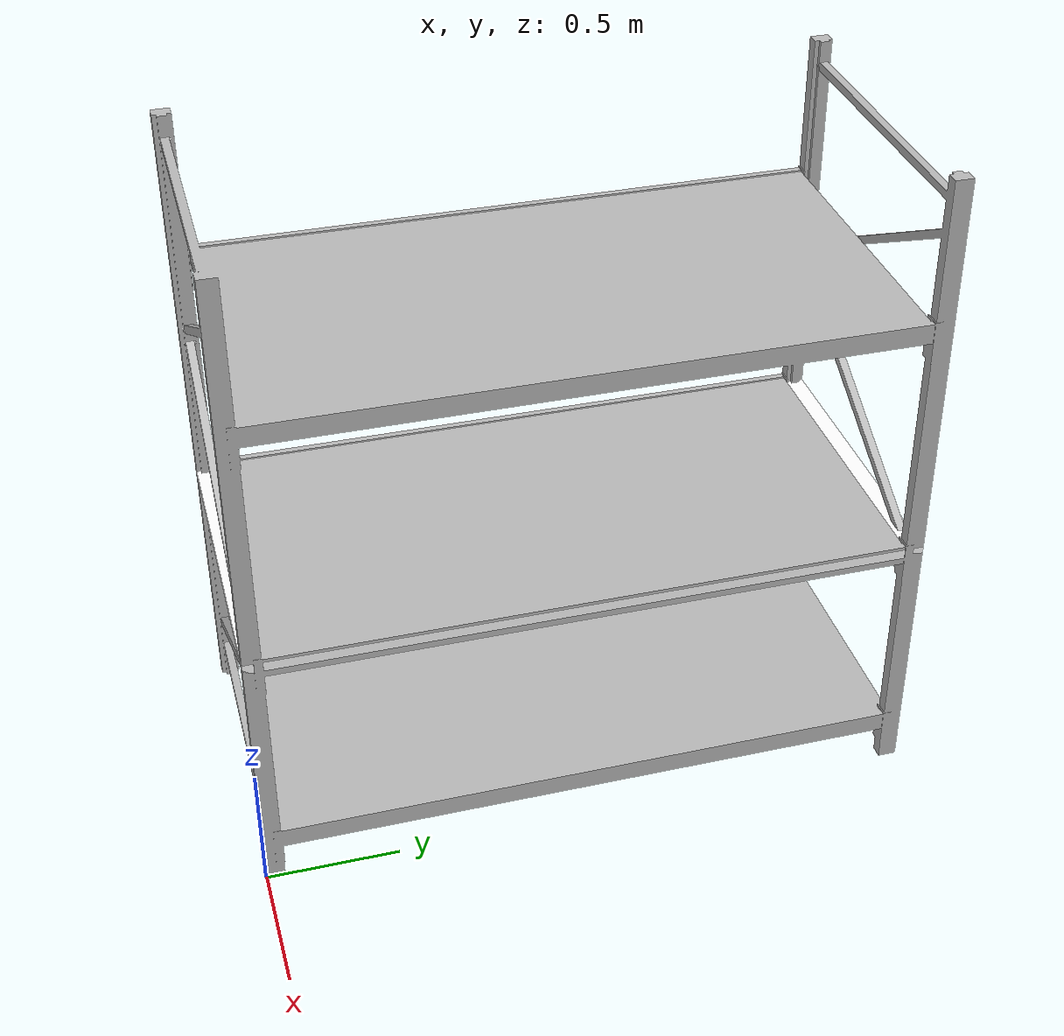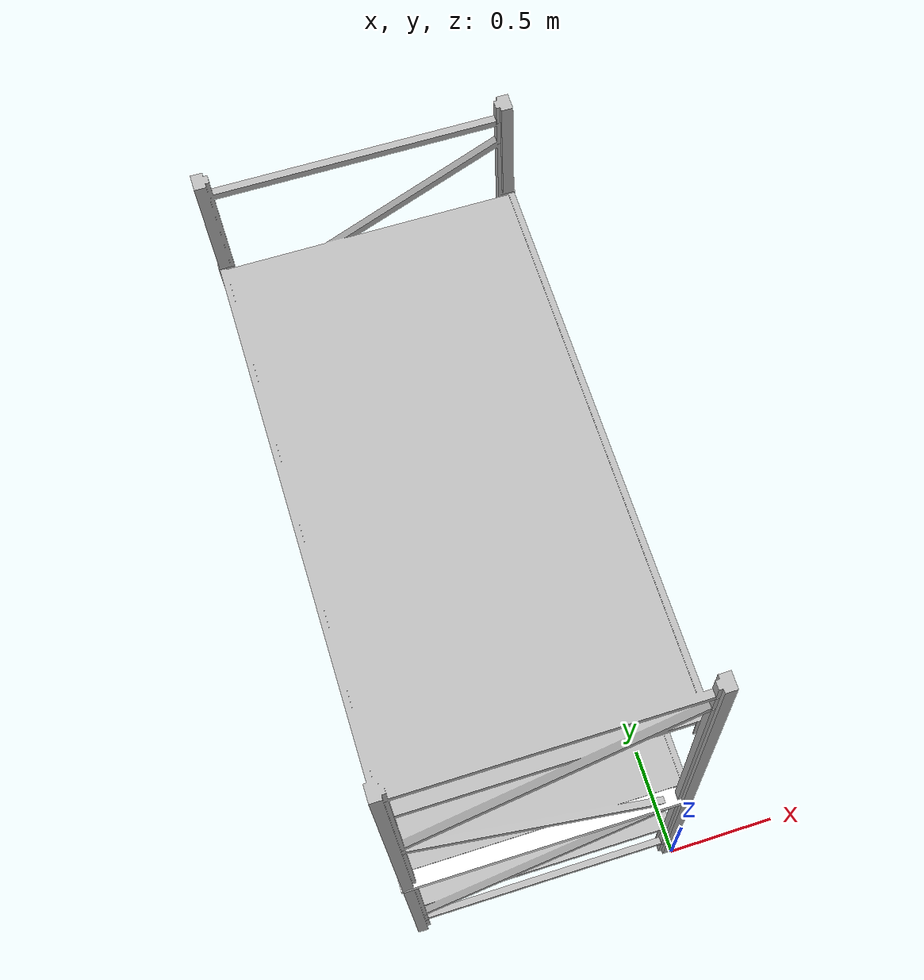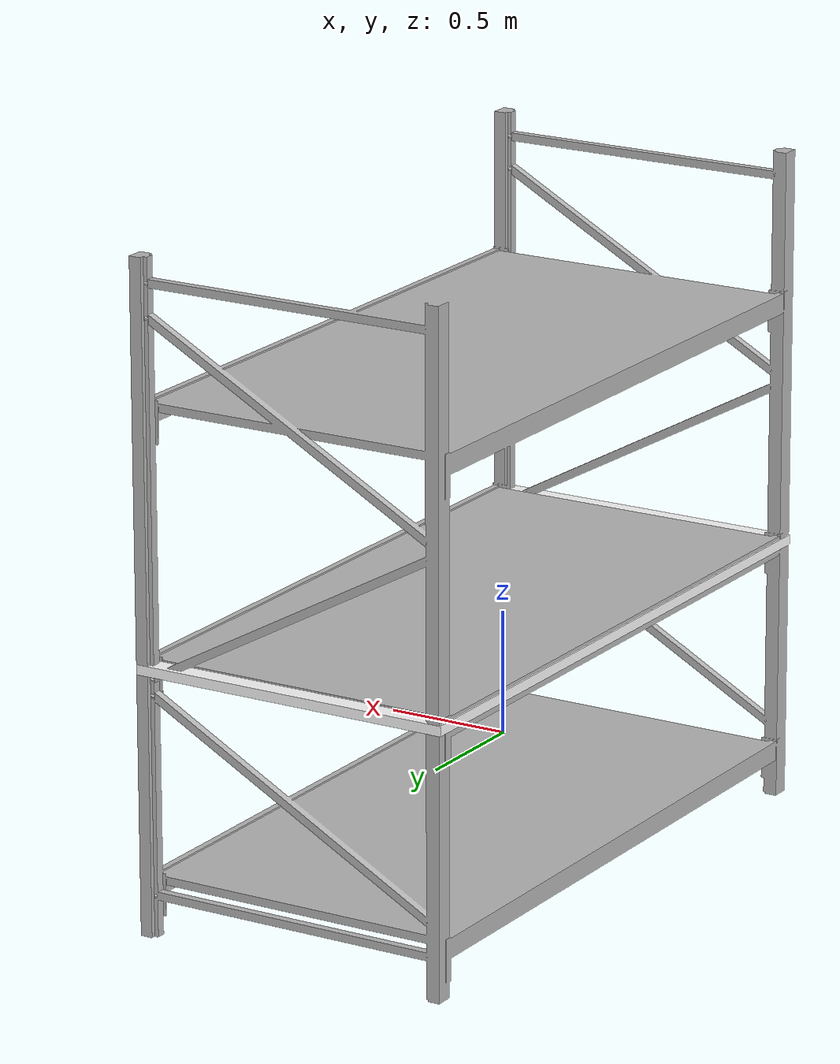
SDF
<?xml version="1.0"?>
<sdf version="1.6">
  <model name="shelf">
    <static>true</static>
    <link name="link">
      <collision name='bottom_shelf_collision'>
        <pose>-0.625 1.25 0.175 0 -0 0</pose>
        <geometry>
          <box>
            <size>1.25 2.5 0.0375</size>
          </box>
        </geometry>
        <surface>
          <friction>
            <ode>
              <mu>0.5</mu>
              <mu2>0.4</mu2>
            </ode>
            <torsional>
              <ode/>
            </torsional>
          </friction>
          <contact>
            <ode>
              <kp>1e+09</kp>
              <kd>10</kd>
            </ode>
          </contact>
          <bounce>
            <restitution_coefficient>0.1</restitution_coefficient>
            <threshold>0.1</threshold>
          </bounce>
        </surface>
        <max_contacts>10</max_contacts>
      </collision>

      <visual name="middle_shelf_visual">
        <pose>-0.625 1.25 1 0 -0 0</pose>
        <geometry>
          <box>
            <size>1.25 2.5 0.0375</size>
          </box>
        </geometry>
        <material>
            <ambient>1 1 1 1</ambient>
            <diffuse>1 1 1 1</diffuse>
            <specular>1 1 1 1</specular>
            <emissive>0 0 0 1</emissive>
        </material>
      </visual>
      <collision name='middle_shelf_collision'>
        <pose>-0.625 1.25 1 0 -0 0</pose>
        <geometry>
          <box>
            <size>1.25 2.5 0.0375</size>
          </box>
        </geometry>
        <surface>
          <friction>
            <ode>
              <mu>0.5</mu>
              <mu2>0.4</mu2>
            </ode>
            <torsional>
              <ode/>
            </torsional>
          </friction>
          <contact>
            <ode>
              <kp>1e+09</kp>
              <kd>10</kd>
            </ode>
          </contact>
          <bounce>
            <restitution_coefficient>0.1</restitution_coefficient>
            <threshold>0.1</threshold>
          </bounce>
        </surface>
        <max_contacts>10</max_contacts>
      </collision>

      <collision name='top_shelf_collision'>
        <pose>-0.625 1.25 1.94 0 -0 0</pose>
        <geometry>
          <box>
            <size>1.25 2.5 0.0375</size>
          </box>
        </geometry>
        <surface>
          <friction>
            <ode>
              <mu>0.5</mu>
              <mu2>0.4</mu2>
            </ode>
            <torsional>
              <ode/>
            </torsional>
          </friction>
          <contact>
            <ode>
              <kp>1e+09</kp>
              <kd>10</kd>
            </ode>
          </contact>
          <bounce>
            <restitution_coefficient>0.1</restitution_coefficient>
            <threshold>0.1</threshold>
          </bounce>
        </surface>
        <max_contacts>10</max_contacts>
      </collision>

      <visual name="visual_shelf">
        <geometry>
          <mesh>
            <uri>model://shelf/meshes/shelf.dae</uri>
            <scale>1 1 1</scale>
          </mesh>
        </geometry>
      </visual>
    </link>
  </model>
</sdf>
